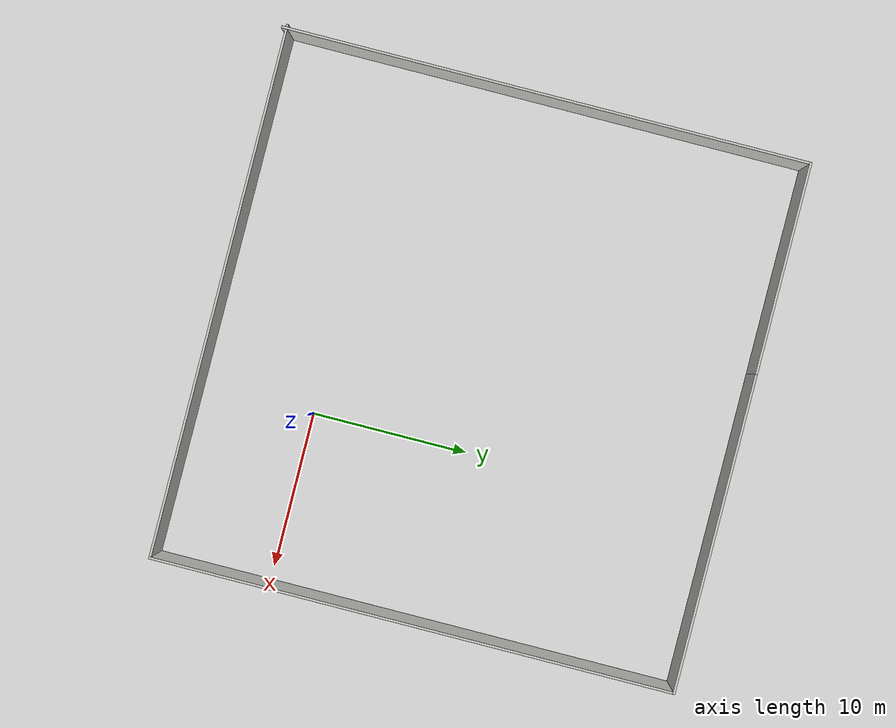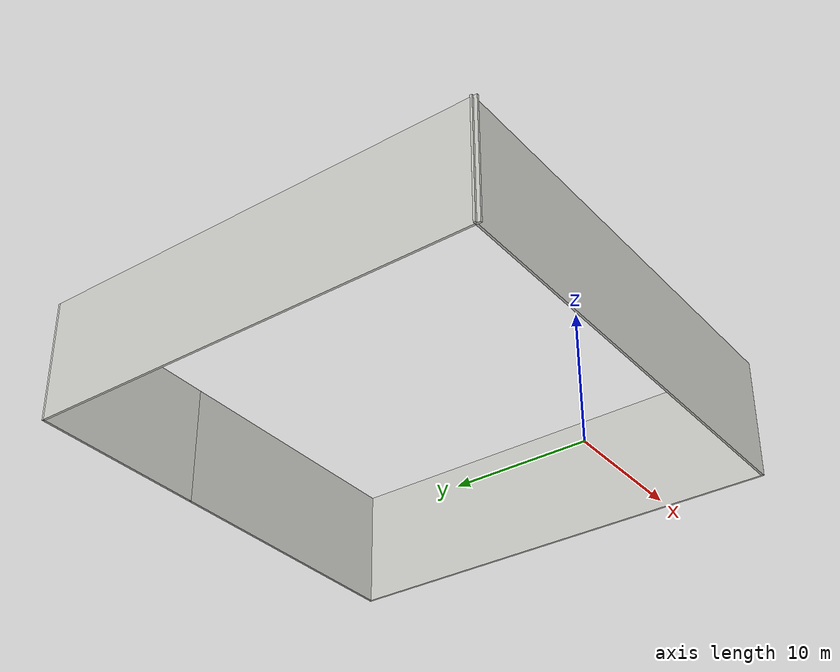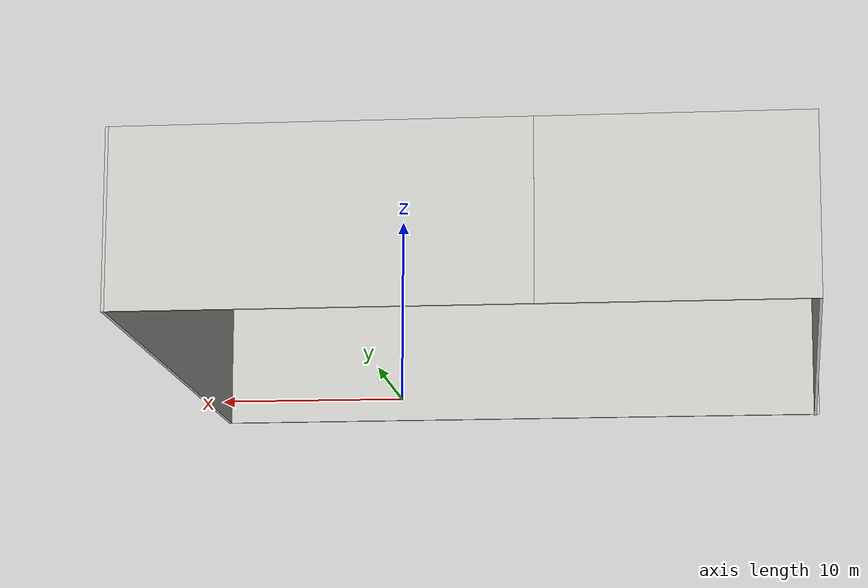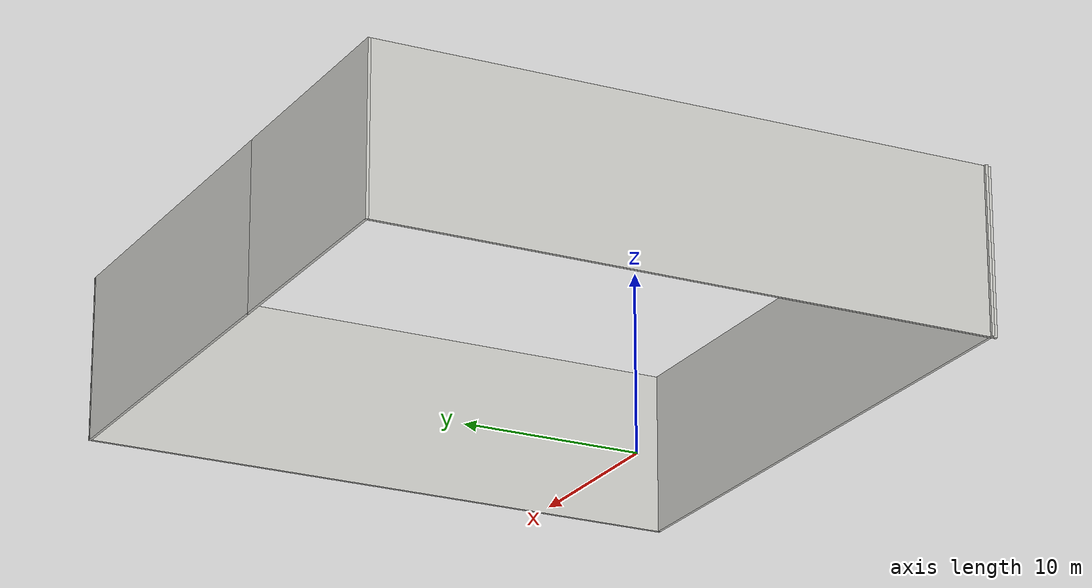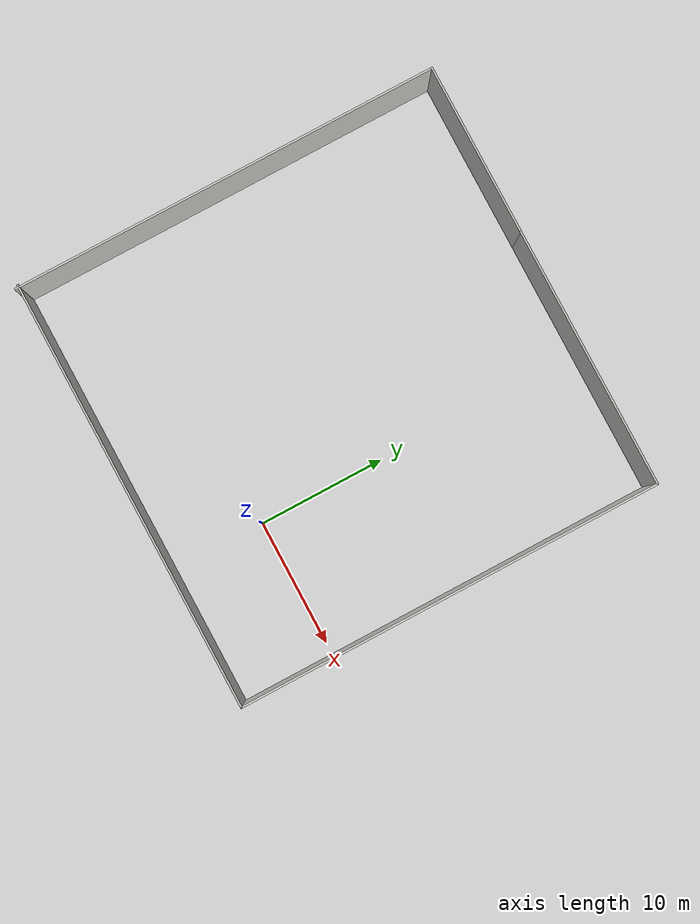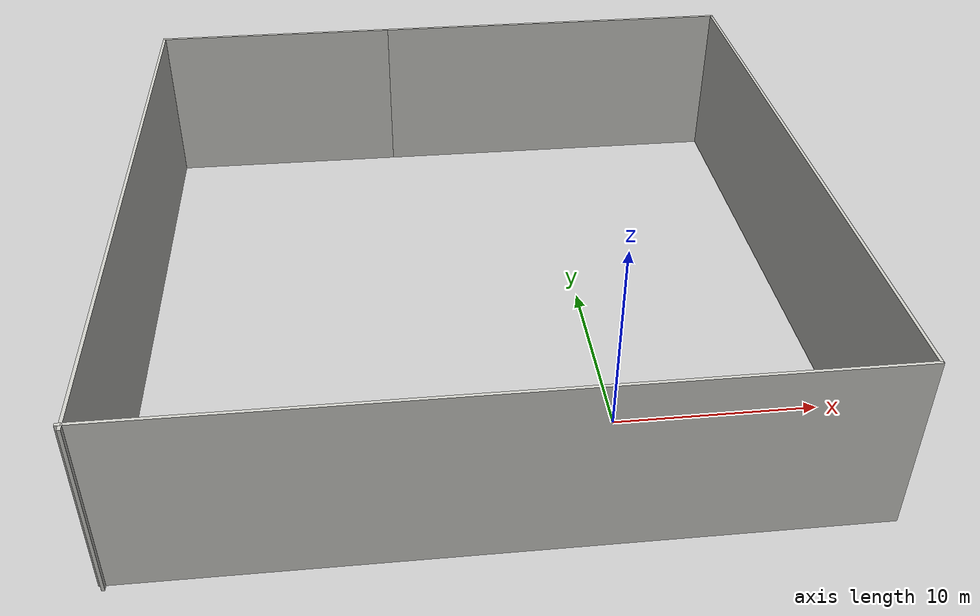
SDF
<?xml version='1.0'?>
<sdf version='1.6'>
  <model name='wall_square_height9'>
    <pose frame=''>-5.967 9.299 0 0 -0 0</pose>
    <link name='Wall_14'>
      <collision name='Wall_14_Collision'>
        <geometry>
          <box>
            <size>13.5 0.15 9</size>
          </box>
        </geometry>
        <pose frame=''>0 0 4.5 0 -0 0</pose>
      </collision>
      <visual name='Wall_14_Visual'>
        <pose frame=''>0 0 4.5 0 -0 0</pose>
        <geometry>
          <box>
            <size>13.5 0.15 9</size>
          </box>
        </geometry>
        <material>
          <script>
            <uri>file://media/materials/scripts/gazebo.material</uri>
            <name>Gazebo/CeilingTiled</name>
          </script>
          <ambient>1 1 1 1</ambient>
        </material>
        <meta>
          <layer>0</layer>
        </meta>
      </visual>
      <pose frame=''>-10.1 16.8 0 0 -0 3.14159</pose>
    </link>
    <link name='Wall_15'>
      <collision name='Wall_15_Collision'>
        <geometry>
          <box>
            <size>33.75 0.15 9</size>
          </box>
        </geometry>
        <pose frame=''>0 0 4.5 0 -0 0</pose>
      </collision>
      <visual name='Wall_15_Visual'>
        <pose frame=''>0 0 4.5 0 -0 0</pose>
        <geometry>
          <box>
            <size>33.75 0.15 9</size>
          </box>
        </geometry>
        <material>
          <script>
            <uri>file://media/materials/scripts/gazebo.material</uri>
            <name>Gazebo/CeilingTiled</name>
          </script>
          <ambient>1 1 1 1</ambient>
        </material>
        <meta>
          <layer>0</layer>
        </meta>
      </visual>
      <pose frame=''>-16.775 0 0 0 0 -1.5708</pose>
    </link>
    <link name='Wall_7'>
      <collision name='Wall_7_Collision'>
        <geometry>
          <box>
            <size>20.5 0.15 9</size>
          </box>
        </geometry>
        <pose frame=''>0 0 4.5 0 -0 0</pose>
      </collision>
      <visual name='Wall_7_Visual'>
        <pose frame=''>0 0 4.5 0 -0 0</pose>
        <geometry>
          <box>
            <size>20.5 0.15 9</size>
          </box>
        </geometry>
        <material>
          <script>
            <uri>file://media/materials/scripts/gazebo.material</uri>
            <name>Gazebo/CeilingTiled</name>
          </script>
          <ambient>1 1 1 1</ambient>
        </material>
        <meta>
          <layer>0</layer>
        </meta>
      </visual>
      <pose frame=''>6.75 16.8 0 0 -0 0</pose>
    </link>
    <link name='Wall_8'>
      <collision name='Wall_8_Collision'>
        <geometry>
          <box>
            <size>33.5 0.15 9</size>
          </box>
        </geometry>
        <pose frame=''>0 0 4.5 0 -0 0</pose>
      </collision>
      <visual name='Wall_8_Visual'>
        <pose frame=''>0 0 4.5 0 -0 0</pose>
        <geometry>
          <box>
            <size>33.5 0.15 9</size>
          </box>
        </geometry>
        <material>
          <script>
            <uri>file://media/materials/scripts/gazebo.material</uri>
            <name>Gazebo/CeilingTiled</name>
          </script>
          <ambient>1 1 1 1</ambient>
        </material>
        <meta>
          <layer>0</layer>
        </meta>
      </visual>
      <pose frame=''>16.925 0.125 0 0 0 -1.5708</pose>
    </link>
    <link name='Wall_9'>
      <collision name='Wall_9_Collision'>
        <geometry>
          <box>
            <size>34 0.15 9</size>
          </box>
        </geometry>
        <pose frame=''>0 0 4.5 0 -0 0</pose>
      </collision>
      <visual name='Wall_9_Visual'>
        <pose frame=''>0 0 4.5 0 -0 0</pose>
        <geometry>
          <box>
            <size>34 0.15 9</size>
          </box>
        </geometry>
        <material>
          <script>
            <uri>file://media/materials/scripts/gazebo.material</uri>
            <name>Gazebo/CeilingTiled</name>
          </script>
          <ambient>1 1 1 1</ambient>
        </material>
        <meta>
          <layer>0</layer>
        </meta>
      </visual>
      <pose frame=''>-1e-06 -16.55 0 0 -0 3.14159</pose>
    </link>
    <static>1</static>
  </model>
</sdf>
